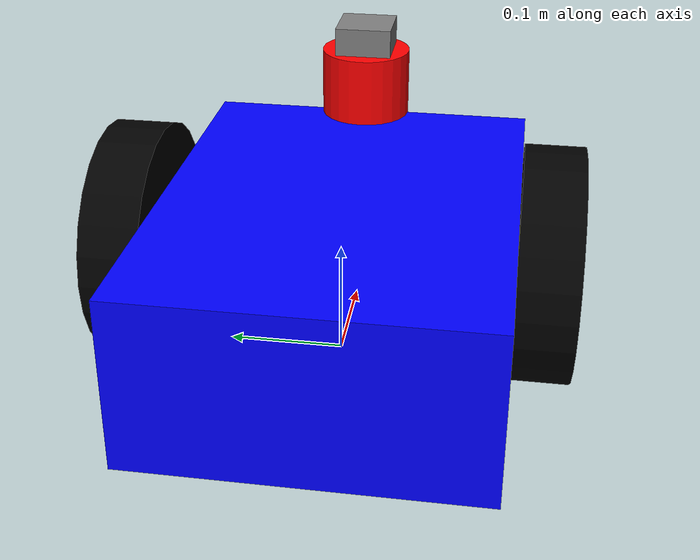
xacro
<?xml version="1.0"?>
<robot xmlns:xacro="http://www.ros.org/wiki/xacro" name="slam_robot">

  <xacro:property name="base_width" value="0.3"/>
  <xacro:property name="base_length" value="0.4"/>
  <xacro:property name="base_height" value="0.15"/>
  <xacro:property name="wheel_radius" value="0.1"/>
  <xacro:property name="wheel_width" value="0.05"/>
  <xacro:property name="wheel_separation" value="0.35"/>

  <link name="base_link">
    <inertial>
      <mass value="5.0"/>
      <origin xyz="0 0 ${base_height/2}"/>
      <inertia ixx="0.1" ixy="0" ixz="0" iyy="0.1" iyz="0" izz="0.1"/>
    </inertial>
    <visual>
      <origin xyz="0 0 ${base_height/2}"/>
      <geometry>
        <box size="${base_length} ${base_width} ${base_height}"/>
      </geometry>
      <material name="blue">
        <color rgba="0 0 1 1"/>
      </material>
    </visual>
    <collision>
      <origin xyz="0 0 ${base_height/2}"/>
      <geometry>
        <box size="${base_length} ${base_width} ${base_height}"/>
      </geometry>
    </collision>
  </link>

  <link name="left_wheel_link">
    <inertial>
      <mass value="0.5"/>
      <origin xyz="0 0 0"/>
      <inertia ixx="0.005" ixy="0" ixz="0" iyy="0.005" iyz="0" izz="0.005"/>
    </inertial>
    <visual>
      <origin xyz="0 0 0" rpy="1.5708 0 0"/>
      <geometry>
        <cylinder radius="${wheel_radius}" length="${wheel_width}"/>
      </geometry>
      <material name="black">
        <color rgba="0 0 0 1"/>
      </material>
    </visual>
    <collision>
      <origin xyz="0 0 0" rpy="1.5708 0 0"/>
      <geometry>
        <cylinder radius="${wheel_radius}" length="${wheel_width}"/>
      </geometry>
    </collision>
  </link>

  <link name="right_wheel_link">
    <inertial>
      <mass value="0.5"/>
      <origin xyz="0 0 0"/>
      <inertia ixx="0.005" ixy="0" ixz="0" iyy="0.005" iyz="0" izz="0.005"/>
    </inertial>
    <visual>
      <origin xyz="0 0 0" rpy="1.5708 0 0"/>
      <geometry>
        <cylinder radius="${wheel_radius}" length="${wheel_width}"/>
      </geometry>
      <material name="black">
        <color rgba="0 0 0 1"/>
      </material>
    </visual>
    <collision>
      <origin xyz="0 0 0" rpy="1.5708 0 0"/>
      <geometry>
        <cylinder radius="${wheel_radius}" length="${wheel_width}"/>
      </geometry>
    </collision>
  </link>

  <joint name="left_wheel_joint" type="revolute">
    <parent link="base_link"/>
    <child link="left_wheel_link"/>
    <origin xyz="0 ${wheel_separation/2} ${wheel_radius}"/>
    <axis xyz="0 1 0"/>
    <limit effort="100" velocity="10" lower="-3.14159" upper="3.14159"/>
  </joint>

  <joint name="right_wheel_joint" type="revolute">
    <parent link="base_link"/>
    <child link="right_wheel_link"/>
    <origin xyz="0 -${wheel_separation/2} ${wheel_radius}"/>
    <axis xyz="0 1 0"/>
    <limit effort="100" velocity="10" lower="-3.14159" upper="3.14159"/>
  </joint>

  <link name="lidar_link">
    <inertial>
      <mass value="0.1"/>
      <origin xyz="0 0 0"/>
      <inertia ixx="0.001" ixy="0" ixz="0" iyy="0.001" iyz="0" izz="0.001"/>
    </inertial>
    <visual>
      <origin xyz="0 0 0"/>
      <geometry>
        <cylinder radius="0.04" length="0.06"/>
      </geometry>
      <material name="red">
        <color rgba="1 0 0 1"/>
      </material>
    </visual>
    <collision>
      <origin xyz="0 0 0"/>
      <geometry>
        <cylinder radius="0.04" length="0.06"/>
      </geometry>
    </collision>
  </link>

  <joint name="lidar_joint" type="fixed">
    <parent link="base_link"/>
    <child link="lidar_link"/>
    <origin xyz="0.15 0 ${base_height + 0.05}"/>
  </joint>

  <link name="camera_link">
    <inertial>
      <mass value="0.05"/>
      <origin xyz="0 0 0"/>
      <inertia ixx="0.0001" ixy="0" ixz="0" iyy="0.0001" iyz="0" izz="0.0001"/>
    </inertial>
    <visual>
      <origin xyz="0 0 0"/>
      <geometry>
        <box size="0.05 0.05 0.05"/>
      </geometry>
      <material name="gray">
        <color rgba="0.5 0.5 0.5 1"/>
      </material>
    </visual>
    <collision>
      <origin xyz="0 0 0"/>
      <geometry>
        <box size="0.05 0.05 0.05"/>
      </geometry>
    </collision>
  </link>

  <joint name="camera_joint" type="fixed">
    <parent link="base_link"/>
    <child link="camera_link"/>
    <origin xyz="0.15 0 ${base_height + 0.08}"/>
  </joint>

  <link name="imu_link">
    <inertial>
      <mass value="0.01"/>
      <origin xyz="0 0 0"/>
      <inertia ixx="0.00001" ixy="0" ixz="0" iyy="0.00001" iyz="0" izz="0.00001"/>
    </inertial>
  </link>

  <joint name="imu_joint" type="fixed">
    <parent link="base_link"/>
    <child link="imu_link"/>
    <origin xyz="0 0 ${base_height/2}"/>
  </joint>

</robot>
